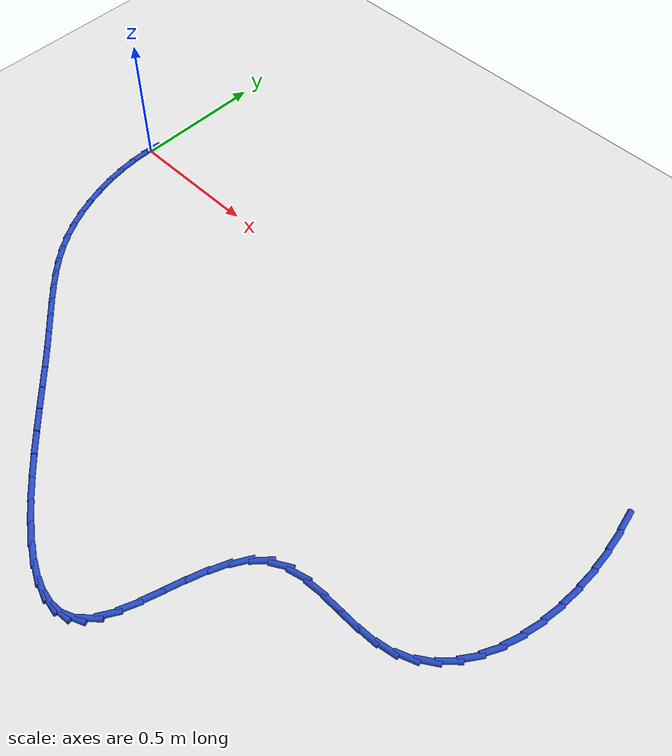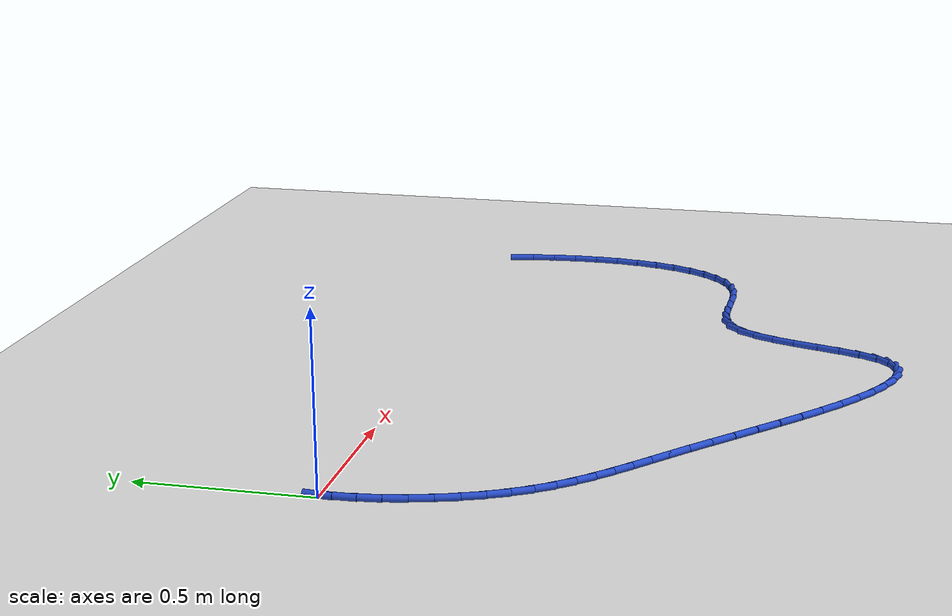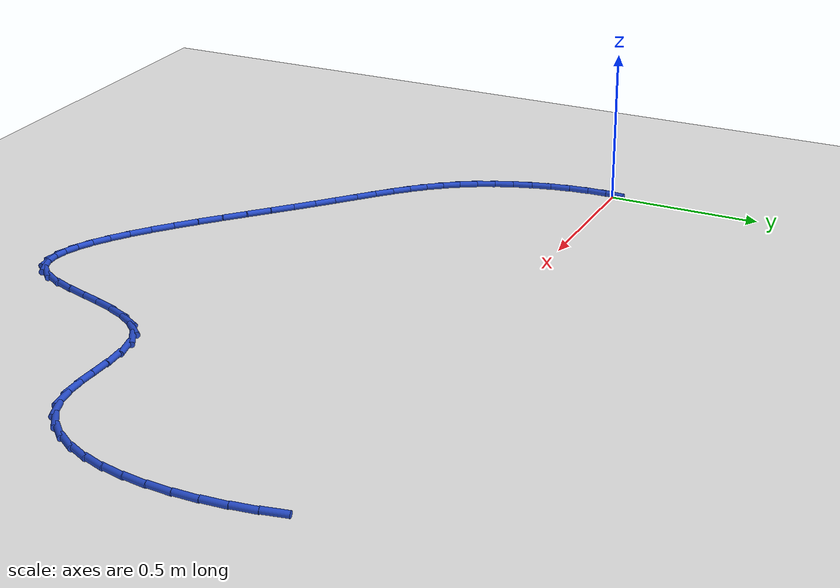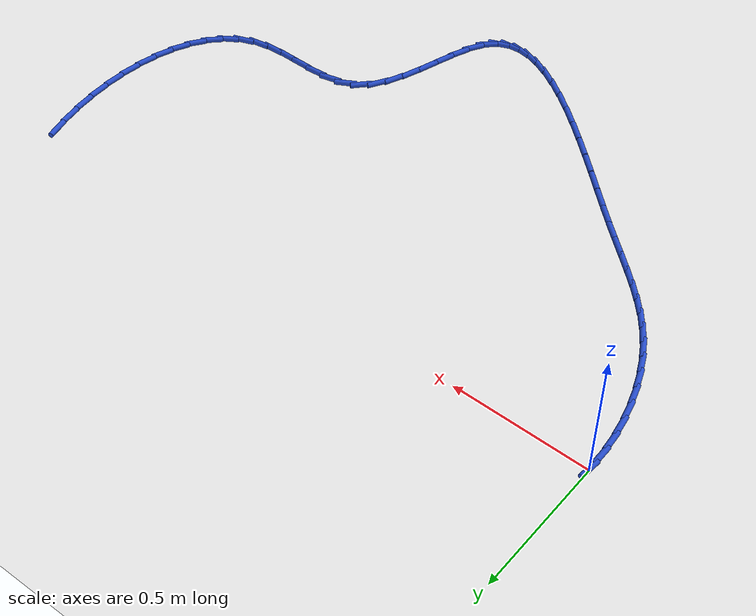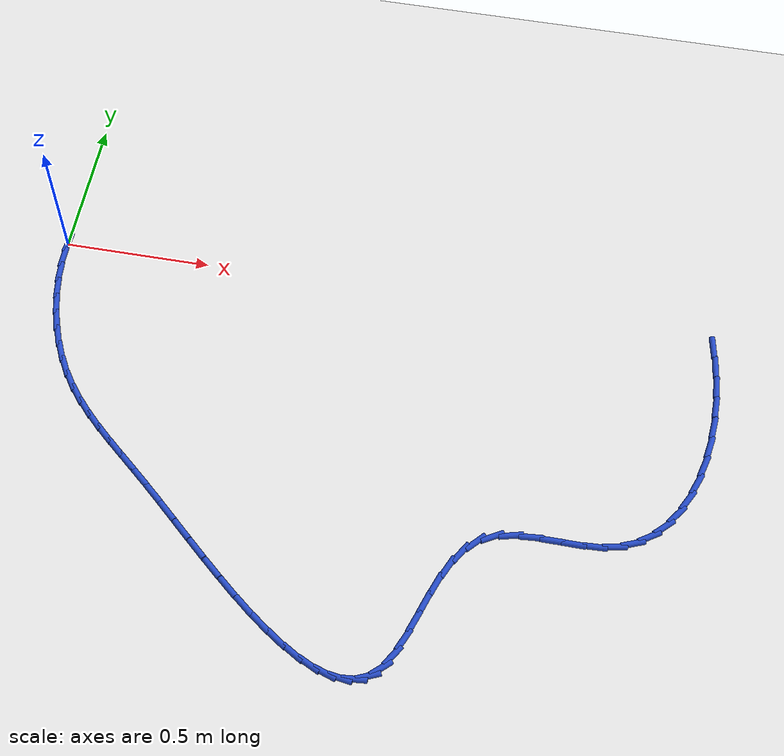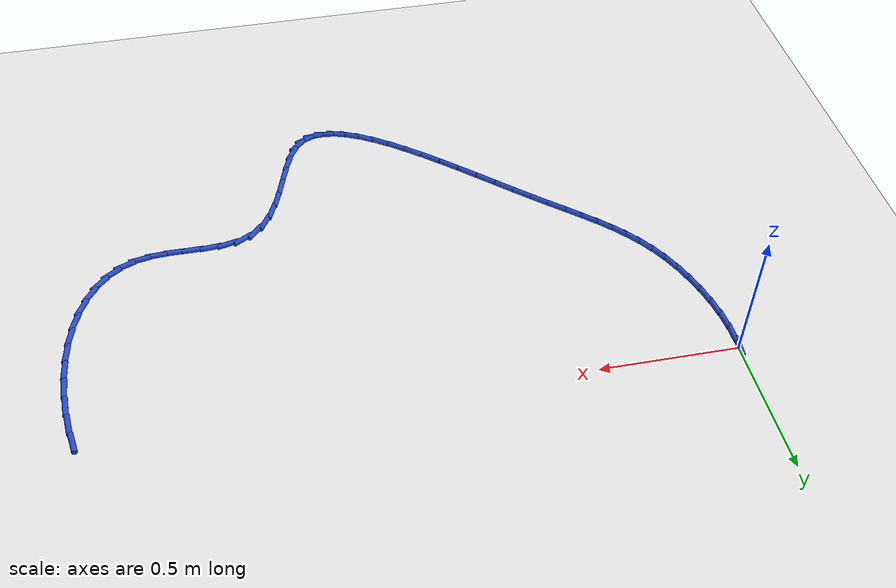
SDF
<sdf version="1.6">
 <world name="default">
  <model name="ground_plane">
   <static>1</static>
   <link name="link">
    <collision name="collision">
     <geometry><plane><normal>0 0 1</normal><size>100 100</size></plane></geometry>
     <surface><friction><ode><mu>100</mu><mu2>50</mu2></ode></friction></surface>
    </collision>
    <visual name="visual">
     <cast_shadows>0</cast_shadows>
     <geometry><plane><normal>0 0 1</normal><size>100 100</size></plane></geometry>
     <material>
      <script><uri>file://media/materials/scripts/gazebo.material</uri><name>Gazebo/WhiteGlow</name></script>
     </material>
    </visual>
   </link>
  </model>
  <model name="line">
   <link name="link_60">
    <pose>2.2459527687845013 -0.031813403079097774 0.01 0 1.57 -1.3912242281037195</pose>
    <collision name="collision">
     <geometry><cylinder><radius>0.01</radius><length>0.08</length></cylinder></geometry>
    </collision>
    <visual name="visual">
     <material>
      <script><name>Gazebo/Blue</name><uri>file://media/materials/scripts/gazebo.material</uri></script>
     </material>
     <geometry><cylinder><radius>0.01</radius><length>0.08</length></cylinder></geometry>
    </visual>
   </link>
   <link name="link_61">
    <pose>2.259685885495849 -0.1074664982625264 0.01 0 1.57 -1.4566532506845868</pose>
    <collision name="collision">
     <geometry><cylinder><radius>0.01</radius><length>0.08</length></cylinder></geometry>
    </collision>
    <visual name="visual">
     <material>
      <script><name>Gazebo/Blue</name><uri>file://media/materials/scripts/gazebo.material</uri></script>
     </material>
     <geometry><cylinder><radius>0.01</radius><length>0.08</length></cylinder></geometry>
    </visual>
   </link>
   <link name="link_62">
    <pose>2.268529218725494 -0.18460559937771298 0.01 0 1.57 -1.5217881517163596</pose>
    <collision name="collision">
     <geometry><cylinder><radius>0.01</radius><length>0.08</length></cylinder></geometry>
    </collision>
    <visual name="visual">
     <material>
      <script><name>Gazebo/Blue</name><uri>file://media/materials/scripts/gazebo.material</uri></script>
     </material>
     <geometry><cylinder><radius>0.01</radius><length>0.08</length></cylinder></geometry>
    </visual>
   </link>
   <link name="link_63">
    <pose>2.272332141116753 -0.262141179438267 0.01 0 1.57 1.552733870946709</pose>
    <collision name="collision">
     <geometry><cylinder><radius>0.01</radius><length>0.08</length></cylinder></geometry>
    </collision>
    <visual name="visual">
     <material>
      <script><name>Gazebo/Blue</name><uri>file://media/materials/scripts/gazebo.material</uri></script>
     </material>
     <geometry><cylinder><radius>0.01</radius><length>0.08</length></cylinder></geometry>
    </visual>
   </link>
   <link name="link_64">
    <pose>2.2709440253129407 -0.33898371145779504 0.01 0 1.57 1.481376678435889</pose>
    <collision name="collision">
     <geometry><cylinder><radius>0.01</radius><length>0.08</length></cylinder></geometry>
    </collision>
    <visual name="visual">
     <material>
      <script><name>Gazebo/Blue</name><uri>file://media/materials/scripts/gazebo.material</uri></script>
     </material>
     <geometry><cylinder><radius>0.01</radius><length>0.08</length></cylinder></geometry>
    </visual>
   </link>
   <link name="link_65">
    <pose>2.2642142439573747 -0.414043668449907 0.01 0 1.57 1.403077558146375</pose>
    <collision name="collision">
     <geometry><cylinder><radius>0.01</radius><length>0.08</length></cylinder></geometry>
    </collision>
    <visual name="visual">
     <material>
      <script><name>Gazebo/Blue</name><uri>file://media/materials/scripts/gazebo.material</uri></script>
     </material>
     <geometry><cylinder><radius>0.01</radius><length>0.08</length></cylinder></geometry>
    </visual>
   </link>
   <link name="link_66">
    <pose>2.2519921696933713 -0.48623152342821185 0.01 0 1.57 1.3146967778949048</pose>
    <collision name="collision">
     <geometry><cylinder><radius>0.01</radius><length>0.08</length></cylinder></geometry>
    </collision>
    <visual name="visual">
     <material>
      <script><name>Gazebo/Blue</name><uri>file://media/materials/scripts/gazebo.material</uri></script>
     </material>
     <geometry><cylinder><radius>0.01</radius><length>0.08</length></cylinder></geometry>
    </visual>
   </link>
   <link name="link_67">
    <pose>2.2341271751642466 -0.554457749406317 0.01 0 1.57 1.21247132509317</pose>
    <collision name="collision">
     <geometry><cylinder><radius>0.01</radius><length>0.08</length></cylinder></geometry>
    </collision>
    <visual name="visual">
     <material>
      <script><name>Gazebo/Blue</name><uri>file://media/materials/scripts/gazebo.material</uri></script>
     </material>
     <geometry><cylinder><radius>0.01</radius><length>0.08</length></cylinder></geometry>
    </visual>
   </link>
   <link name="link_68">
    <pose>2.2104686330133174 -0.6176328193978314 0.01 0 1.57 1.092038677563902</pose>
    <collision name="collision">
     <geometry><cylinder><radius>0.01</radius><length>0.08</length></cylinder></geometry>
    </collision>
    <visual name="visual">
     <material>
      <script><name>Gazebo/Blue</name><uri>file://media/materials/scripts/gazebo.material</uri></script>
     </material>
     <geometry><cylinder><radius>0.01</radius><length>0.08</length></cylinder></geometry>
    </visual>
   </link>
   <link name="link_69">
    <pose>2.1808659158838997 -0.6746672064163639 0.01 0 1.57 0.9489120036592131</pose>
    <collision name="collision">
     <geometry><cylinder><radius>0.01</radius><length>0.08</length></cylinder></geometry>
    </collision>
    <visual name="visual">
     <material>
      <script><name>Gazebo/Blue</name><uri>file://media/materials/scripts/gazebo.material</uri></script>
     </material>
     <geometry><cylinder><radius>0.01</radius><length>0.08</length></cylinder></geometry>
    </visual>
   </link>
   <link name="link_70">
    <pose>2.14516839641931 -0.724471383475524 0.01 0 1.57 0.7799023132848136</pose>
    <collision name="collision">
     <geometry><cylinder><radius>0.01</radius><length>0.08</length></cylinder></geometry>
    </collision>
    <visual name="visual">
     <material>
      <script><name>Gazebo/Blue</name><uri>file://media/materials/scripts/gazebo.material</uri></script>
     </material>
     <geometry><cylinder><radius>0.01</radius><length>0.08</length></cylinder></geometry>
    </visual>
   </link>
   <link name="link_71">
    <pose>2.103225447262865 -0.7659558235889186 0.01 0 1.57 0.5858393447261251</pose>
    <collision name="collision">
     <geometry><cylinder><radius>0.01</radius><length>0.08</length></cylinder></geometry>
    </collision>
    <visual name="visual">
     <material>
      <script><name>Gazebo/Blue</name><uri>file://media/materials/scripts/gazebo.material</uri></script>
     </material>
     <geometry><cylinder><radius>0.01</radius><length>0.08</length></cylinder></geometry>
    </visual>
   </link>
   <link name="link_72">
    <pose>2.054886441057881 -0.7980309997701569 0.01 0 1.57 0.3745569302507733</pose>
    <collision name="collision">
     <geometry><cylinder><radius>0.01</radius><length>0.08</length></cylinder></geometry>
    </collision>
    <visual name="visual">
     <material>
      <script><name>Gazebo/Blue</name><uri>file://media/materials/scripts/gazebo.material</uri></script>
     </material>
     <geometry><cylinder><radius>0.01</radius><length>0.08</length></cylinder></geometry>
    </visual>
   </link>
   <link name="link_73">
    <pose>2.0000007504476747 -0.8196073850328481 0.01 0 1.57 0.17216087403356725</pose>
    <collision name="collision">
     <geometry><cylinder><radius>0.01</radius><length>0.08</length></cylinder></geometry>
    </collision>
    <visual name="visual">
     <material>
      <script><name>Gazebo/Blue</name><uri>file://media/materials/scripts/gazebo.material</uri></script>
     </material>
     <geometry><cylinder><radius>0.01</radius><length>0.08</length></cylinder></geometry>
    </visual>
   </link>
   <link name="link_74">
    <pose>1.9387494240128234 -0.8302579002778486 0.01 0 1.57 0.043564233098058944</pose>
    <collision name="collision">
     <geometry><cylinder><radius>0.01</radius><length>0.08</length></cylinder></geometry>
    </collision>
    <visual name="visual">
     <material>
      <script><name>Gazebo/Blue</name><uri>file://media/materials/scripts/gazebo.material</uri></script>
     </material>
     <geometry><cylinder><radius>0.01</radius><length>0.08</length></cylinder></geometry>
    </visual>
   </link>
   <link name="link_75">
    <pose>1.873098089576927 -0.8331197609970615 0.01 0 1.57 -0.008831704530728205</pose>
    <collision name="collision">
     <geometry><cylinder><radius>0.01</radius><length>0.08</length></cylinder></geometry>
    </collision>
    <visual name="visual">
     <material>
      <script><name>Gazebo/Blue</name><uri>file://media/materials/scripts/gazebo.material</uri></script>
     </material>
     <geometry><cylinder><radius>0.01</radius><length>0.08</length></cylinder></geometry>
    </visual>
   </link>
   <link name="link_76">
    <pose>1.8056099530855525 -0.8325237102190371 0.01 0 1.57 0.004158649828105054</pose>
    <collision name="collision">
     <geometry><cylinder><radius>0.01</radius><length>0.08</length></cylinder></geometry>
    </collision>
    <visual name="visual">
     <material>
      <script><name>Gazebo/Blue</name><uri>file://media/materials/scripts/gazebo.material</uri></script>
     </material>
     <geometry><cylinder><radius>0.01</radius><length>0.08</length></cylinder></geometry>
    </visual>
   </link>
   <link name="link_77">
    <pose>1.7388486499340636 -0.8328013487014414 0.01 0 1.57 0.08617108545308087</pose>
    <collision name="collision">
     <geometry><cylinder><radius>0.01</radius><length>0.08</length></cylinder></geometry>
    </collision>
    <visual name="visual">
     <material>
      <script><name>Gazebo/Blue</name><uri>file://media/materials/scripts/gazebo.material</uri></script>
     </material>
     <geometry><cylinder><radius>0.01</radius><length>0.08</length></cylinder></geometry>
    </visual>
   </link>
   <link name="link_78">
    <pose>1.6753778155178223 -0.8382842772019397 0.01 0 1.57 0.2550096090790742</pose>
    <collision name="collision">
     <geometry><cylinder><radius>0.01</radius><length>0.08</length></cylinder></geometry>
    </collision>
    <visual name="visual">
     <material>
      <script><name>Gazebo/Blue</name><uri>file://media/materials/scripts/gazebo.material</uri></script>
     </material>
     <geometry><cylinder><radius>0.01</radius><length>0.08</length></cylinder></geometry>
    </visual>
   </link>
   <link name="link_79">
    <pose>1.6177610852321913 -0.8533040964781969 0.01 0 1.57 0.5296409430327688</pose>
    <collision name="collision">
     <geometry><cylinder><radius>0.01</radius><length>0.08</length></cylinder></geometry>
    </collision>
    <visual name="visual">
     <material>
      <script><name>Gazebo/Blue</name><uri>file://media/materials/scripts/gazebo.material</uri></script>
     </material>
     <geometry><cylinder><radius>0.01</radius><length>0.08</length></cylinder></geometry>
    </visual>
   </link>
   <link name="link_80">
    <pose>1.5685264645867172 -0.8821277564366301 0.01 0 1.57 0.8291518748542331</pose>
    <collision name="collision">
     <geometry><cylinder><radius>0.01</radius><length>0.08</length></cylinder></geometry>
    </collision>
    <visual name="visual">
     <material>
      <script><name>Gazebo/Blue</name><uri>file://media/materials/scripts/gazebo.material</uri></script>
     </material>
     <geometry><cylinder><radius>0.01</radius><length>0.08</length></cylinder></geometry>
    </visual>
   </link>
   <link name="link_81">
    <pose>1.5284606214315035 -0.9258625291060414 0.01 0 1.57 1.0375245438962044</pose>
    <collision name="collision">
     <geometry><cylinder><radius>0.01</radius><length>0.08</length></cylinder></geometry>
    </collision>
    <visual name="visual">
     <material>
      <script><name>Gazebo/Blue</name><uri>file://media/materials/scripts/gazebo.material</uri></script>
     </material>
     <geometry><cylinder><radius>0.01</radius><length>0.08</length></cylinder></geometry>
    </visual>
   </link>
   <link name="link_82">
    <pose>1.49585734318108 -0.9810923253387697 0.01 0 1.57 1.165153686383182</pose>
    <collision name="collision">
     <geometry><cylinder><radius>0.01</radius><length>0.08</length></cylinder></geometry>
    </collision>
    <visual name="visual">
     <material>
      <script><name>Gazebo/Blue</name><uri>file://media/materials/scripts/gazebo.material</uri></script>
     </material>
     <geometry><cylinder><radius>0.01</radius><length>0.08</length></cylinder></geometry>
    </visual>
   </link>
   <link name="link_83">
    <pose>1.4688183869898215 -1.0440526147979652 0.01 0 1.57 1.2348046860843414</pose>
    <collision name="collision">
     <geometry><cylinder><radius>0.01</radius><length>0.08</length></cylinder></geometry>
    </collision>
    <visual name="visual">
     <material>
      <script><name>Gazebo/Blue</name><uri>file://media/materials/scripts/gazebo.material</uri></script>
     </material>
     <geometry><cylinder><radius>0.01</radius><length>0.08</length></cylinder></geometry>
    </visual>
   </link>
   <link name="link_84">
    <pose>1.4454455100121038 -1.1109788671467784 0.01 0 1.57 1.2594161922465326</pose>
    <collision name="collision">
     <geometry><cylinder><radius>0.01</radius><length>0.08</length></cylinder></geometry>
    </collision>
    <visual name="visual">
     <material>
      <script><name>Gazebo/Blue</name><uri>file://media/materials/scripts/gazebo.material</uri></script>
     </material>
     <geometry><cylinder><radius>0.01</radius><length>0.08</length></cylinder></geometry>
    </visual>
   </link>
   <link name="link_85">
    <pose>1.4238404694023015 -1.1781065520483598 0.01 0 1.57 1.241317449766482</pose>
    <collision name="collision">
     <geometry><cylinder><radius>0.01</radius><length>0.08</length></cylinder></geometry>
    </collision>
    <visual name="visual">
     <material>
      <script><name>Gazebo/Blue</name><uri>file://media/materials/scripts/gazebo.material</uri></script>
     </material>
     <geometry><cylinder><radius>0.01</radius><length>0.08</length></cylinder></geometry>
    </visual>
   </link>
   <link name="link_86">
    <pose>1.402105022314791 -1.2416711391658573 0.01 0 1.57 1.17098503668811</pose>
    <collision name="collision">
     <geometry><cylinder><radius>0.01</radius><length>0.08</length></cylinder></geometry>
    </collision>
    <visual name="visual">
     <material>
      <script><name>Gazebo/Blue</name><uri>file://media/materials/scripts/gazebo.material</uri></script>
     </material>
     <geometry><cylinder><radius>0.01</radius><length>0.08</length></cylinder></geometry>
    </visual>
   </link>
   <link name="link_87">
    <pose>1.3783409259039483 -1.297908098162423 0.01 0 1.57 1.0205954968439659</pose>
    <collision name="collision">
     <geometry><cylinder><radius>0.01</radius><length>0.08</length></cylinder></geometry>
    </collision>
    <visual name="visual">
     <material>
      <script><name>Gazebo/Blue</name><uri>file://media/materials/scripts/gazebo.material</uri></script>
     </material>
     <geometry><cylinder><radius>0.01</radius><length>0.08</length></cylinder></geometry>
    </visual>
   </link>
   <link name="link_88">
    <pose>1.3506499373241478 -1.3430528987012056 0.01 0 1.57 0.7496164368153231</pose>
    <collision name="collision">
     <geometry><cylinder><radius>0.01</radius><length>0.08</length></cylinder></geometry>
    </collision>
    <visual name="visual">
     <material>
      <script><name>Gazebo/Blue</name><uri>file://media/materials/scripts/gazebo.material</uri></script>
     </material>
     <geometry><cylinder><radius>0.01</radius><length>0.08</length></cylinder></geometry>
    </visual>
   </link>
   <link name="link_89">
    <pose>1.317441114754525 -1.3739663363847865 0.01 0 1.57 0.4104778298970136</pose>
    <collision name="collision">
     <geometry><cylinder><radius>0.01</radius><length>0.08</length></cylinder></geometry>
    </collision>
    <visual name="visual">
     <material>
      <script><name>Gazebo/Blue</name><uri>file://media/materials/scripts/gazebo.material</uri></script>
     </material>
     <geometry><cylinder><radius>0.01</radius><length>0.08</length></cylinder></geometry>
    </visual>
   </link>
   <link name="link_90">
    <pose>1.2787442323942095 -1.3908071970145905 0.01 0 1.57 0.09167555679548034</pose>
    <collision name="collision">
     <geometry><cylinder><radius>0.01</radius><length>0.08</length></cylinder></geometry>
    </collision>
    <visual name="visual">
     <material>
      <script><name>Gazebo/Blue</name><uri>file://media/materials/scripts/gazebo.material</uri></script>
     </material>
     <geometry><cylinder><radius>0.01</radius><length>0.08</length></cylinder></geometry>
    </visual>
   </link>
   <link name="link_91">
    <pose>1.2351214335297533 -1.394817582661417 0.01 0 1.57 -0.1566133867615368</pose>
    <collision name="collision">
     <geometry><cylinder><radius>0.01</radius><length>0.08</length></cylinder></geometry>
    </collision>
    <visual name="visual">
     <material>
      <script><name>Gazebo/Blue</name><uri>file://media/materials/scripts/gazebo.material</uri></script>
     </material>
     <geometry><cylinder><radius>0.01</radius><length>0.08</length></cylinder></geometry>
    </visual>
   </link>
   <link name="link_92">
    <pose>1.1871351779165404 -1.387240239377548 0.01 0 1.57 -0.33317479895003</pose>
    <collision name="collision">
     <geometry><cylinder><radius>0.01</radius><length>0.08</length></cylinder></geometry>
    </collision>
    <visual name="visual">
     <material>
      <script><name>Gazebo/Blue</name><uri>file://media/materials/scripts/gazebo.material</uri></script>
     </material>
     <geometry><cylinder><radius>0.01</radius><length>0.08</length></cylinder></geometry>
    </visual>
   </link>
   <link name="link_93">
    <pose>1.135347925309956 -1.369317913215265 0.01 0 1.57 -0.45652275618317256</pose>
    <collision name="collision">
     <geometry><cylinder><radius>0.01</radius><length>0.08</length></cylinder></geometry>
    </collision>
    <visual name="visual">
     <material>
      <script><name>Gazebo/Blue</name><uri>file://media/materials/scripts/gazebo.material</uri></script>
     </material>
     <geometry><cylinder><radius>0.01</radius><length>0.08</length></cylinder></geometry>
    </visual>
   </link>
   <link name="link_94">
    <pose>1.0803221354653858 -1.3422933502268517 0.01 0 1.57 -0.5437633219238047</pose>
    <collision name="collision">
     <geometry><cylinder><radius>0.01</radius><length>0.08</length></cylinder></geometry>
    </collision>
    <visual name="visual">
     <material>
      <script><name>Gazebo/Blue</name><uri>file://media/materials/scripts/gazebo.material</uri></script>
     </material>
     <geometry><cylinder><radius>0.01</radius><length>0.08</length></cylinder></geometry>
    </visual>
   </link>
   <link name="link_95">
    <pose>1.022620268138214 -1.3074092964645894 0.01 0 1.57 -0.6065619564182877</pose>
    <collision name="collision">
     <geometry><cylinder><radius>0.01</radius><length>0.08</length></cylinder></geometry>
    </collision>
    <visual name="visual">
     <material>
      <script><name>Gazebo/Blue</name><uri>file://media/materials/scripts/gazebo.material</uri></script>
     </material>
     <geometry><cylinder><radius>0.01</radius><length>0.08</length></cylinder></geometry>
    </visual>
   </link>
   <link name="link_96">
    <pose>0.9628047830838243 -1.2659084979807598 0.01 0 1.57 -0.6523051783694331</pose>
    <collision name="collision">
     <geometry><cylinder><radius>0.01</radius><length>0.08</length></cylinder></geometry>
    </collision>
    <visual name="visual">
     <material>
      <script><name>Gazebo/Blue</name><uri>file://media/materials/scripts/gazebo.material</uri></script>
     </material>
     <geometry><cylinder><radius>0.01</radius><length>0.08</length></cylinder></geometry>
    </visual>
   </link>
   <link name="link_97">
    <pose>0.9014381400576034 -1.2190337008276464 0.01 0 1.57 -0.6856146393436244</pose>
    <collision name="collision">
     <geometry><cylinder><radius>0.01</radius><length>0.08</length></cylinder></geometry>
    </collision>
    <visual name="visual">
     <material>
      <script><name>Gazebo/Blue</name><uri>file://media/materials/scripts/gazebo.material</uri></script>
     </material>
     <geometry><cylinder><radius>0.01</radius><length>0.08</length></cylinder></geometry>
    </visual>
   </link>
   <link name="link_98">
    <pose>0.8390827988149349 -1.16802765105753 0.01 0 1.57 -0.7093766486387101</pose>
    <collision name="collision">
     <geometry><cylinder><radius>0.01</radius><length>0.08</length></cylinder></geometry>
    </collision>
    <visual name="visual">
     <material>
      <script><name>Gazebo/Blue</name><uri>file://media/materials/scripts/gazebo.material</uri></script>
     </material>
     <geometry><cylinder><radius>0.01</radius><length>0.08</length></cylinder></geometry>
    </visual>
   </link>
   <link name="link_99">
    <pose>0.7763012191112041 -1.1141330947226944 0.01 0 1.57 -0.7253528106126194</pose>
    <collision name="collision">
     <geometry><cylinder><radius>0.01</radius><length>0.08</length></cylinder></geometry>
    </collision>
    <visual name="visual">
     <material>
      <script><name>Gazebo/Blue</name><uri>file://media/materials/scripts/gazebo.material</uri></script>
     </material>
     <geometry><cylinder><radius>0.01</radius><length>0.08</length></cylinder></geometry>
    </visual>
   </link>
   <link name="link_100">
    <pose>0.7136558607017945 -1.0585927778754194 0.01 0 1.57 -0.7345188316734146</pose>
    <collision name="collision">
     <geometry><cylinder><radius>0.01</radius><length>0.08</length></cylinder></geometry>
    </collision>
    <visual name="visual">
     <material>
      <script><name>Gazebo/Blue</name><uri>file://media/materials/scripts/gazebo.material</uri></script>
     </material>
     <geometry><cylinder><radius>0.01</radius><length>0.08</length></cylinder></geometry>
    </visual>
   </link>
   <link name="link_101">
    <pose>0.6517091833420932 -1.00264944656799 0.01 0 1.57 -0.7372276793848825</pose>
    <collision name="collision">
     <geometry><cylinder><radius>0.01</radius><length>0.08</length></cylinder></geometry>
    </collision>
    <visual name="visual">
     <material>
      <script><name>Gazebo/Blue</name><uri>file://media/materials/scripts/gazebo.material</uri></script>
     </material>
     <geometry><cylinder><radius>0.01</radius><length>0.08</length></cylinder></geometry>
    </visual>
   </link>
   <link name="link_102">
    <pose>0.5910236467874835 -0.9475458468526872 0.01 0 1.57 -0.733240878392888</pose>
    <collision name="collision">
     <geometry><cylinder><radius>0.01</radius><length>0.08</length></cylinder></geometry>
    </collision>
    <visual name="visual">
     <material>
      <script><name>Gazebo/Blue</name><uri>file://media/materials/scripts/gazebo.material</uri></script>
     </material>
     <geometry><cylinder><radius>0.01</radius><length>0.08</length></cylinder></geometry>
    </visual>
   </link>
   <link name="link_103">
    <pose>0.5321617107933505 -0.8945247247817929 0.01 0 1.57 -0.7218790603040492</pose>
    <collision name="collision">
     <geometry><cylinder><radius>0.01</radius><length>0.08</length></cylinder></geometry>
    </collision>
    <visual name="visual">
     <material>
      <script><name>Gazebo/Blue</name><uri>file://media/materials/scripts/gazebo.material</uri></script>
     </material>
     <geometry><cylinder><radius>0.01</radius><length>0.08</length></cylinder></geometry>
    </visual>
   </link>
   <link name="link_104">
    <pose>0.47567888623524657 -0.8447973637653782 0.01 0 1.57 -0.7100350715369338</pose>
    <collision name="collision">
     <geometry><cylinder><radius>0.01</radius><length>0.08</length></cylinder></geometry>
    </collision>
    <visual name="visual">
     <material>
      <script><name>Gazebo/Blue</name><uri>file://media/materials/scripts/gazebo.material</uri></script>
     </material>
     <geometry><cylinder><radius>0.01</radius><length>0.08</length></cylinder></geometry>
    </visual>
   </link>
   <link name="link_105">
    <pose>0.42191063675810986 -0.798578733065873 0.01 0 1.57 -0.7083541314229664</pose>
    <collision name="collision">
     <geometry><cylinder><radius>0.01</radius><length>0.08</length></cylinder></geometry>
    </collision>
    <visual name="visual">
     <material>
      <script><name>Gazebo/Blue</name><uri>file://media/materials/scripts/gazebo.material</uri></script>
     </material>
     <geometry><cylinder><radius>0.01</radius><length>0.08</length></cylinder></geometry>
    </visual>
   </link>
   <link name="link_106">
    <pose>0.37093258715226 -0.7549073221225537 0.01 0 1.57 -0.7193265075686208</pose>
    <collision name="collision">
     <geometry><cylinder><radius>0.01</radius><length>0.08</length></cylinder></geometry>
    </collision>
    <visual name="visual">
     <material>
      <script><name>Gazebo/Blue</name><uri>file://media/materials/scripts/gazebo.material</uri></script>
     </material>
     <geometry><cylinder><radius>0.01</radius><length>0.08</length></cylinder></geometry>
    </visual>
   </link>
   <link name="link_107">
    <pose>0.32280538601250364 -0.7127538122253904 0.01 0 1.57 -0.7445512974469973</pose>
    <collision name="collision">
     <geometry><cylinder><radius>0.01</radius><length>0.08</length></cylinder></geometry>
    </collision>
    <visual name="visual">
     <material>
      <script><name>Gazebo/Blue</name><uri>file://media/materials/scripts/gazebo.material</uri></script>
     </material>
     <geometry><cylinder><radius>0.01</radius><length>0.08</length></cylinder></geometry>
    </visual>
   </link>
   <link name="link_108">
    <pose>0.27758968193364686 -0.6710888846643511 0.01 0 1.57 -0.7849494382984589</pose>
    <collision name="collision">
     <geometry><cylinder><radius>0.01</radius><length>0.08</length></cylinder></geometry>
    </collision>
    <visual name="visual">
     <material>
      <script><name>Gazebo/Blue</name><uri>file://media/materials/scripts/gazebo.material</uri></script>
     </material>
     <geometry><cylinder><radius>0.01</radius><length>0.08</length></cylinder></geometry>
    </visual>
   </link>
   <link name="link_109">
    <pose>0.2353461235104975 -0.6288832207294074 0.01 0 1.57 -0.8403511943941394</pose>
    <collision name="collision">
     <geometry><cylinder><radius>0.01</radius><length>0.08</length></cylinder></geometry>
    </collision>
    <visual name="visual">
     <material>
      <script><name>Gazebo/Blue</name><uri>file://media/materials/scripts/gazebo.material</uri></script>
     </material>
     <geometry><cylinder><radius>0.01</radius><length>0.08</length></cylinder></geometry>
    </visual>
   </link>
   <link name="link_110">
    <pose>0.19613535933786144 -0.5851075017105285 0.01 0 1.57 -0.9091111942491901</pose>
    <collision name="collision">
     <geometry><cylinder><radius>0.01</radius><length>0.08</length></cylinder></geometry>
    </collision>
    <visual name="visual">
     <material>
      <script><name>Gazebo/Blue</name><uri>file://media/materials/scripts/gazebo.material</uri></script>
     </material>
     <geometry><cylinder><radius>0.01</radius><length>0.08</length></cylinder></geometry>
    </visual>
   </link>
   <link name="link_111">
    <pose>0.1600180380105455 -0.5387324088976836 0.01 0 1.57 -0.9879462189386575</pose>
    <collision name="collision">
     <geometry><cylinder><radius>0.01</radius><length>0.08</length></cylinder></geometry>
    </collision>
    <visual name="visual">
     <material>
      <script><name>Gazebo/Blue</name><uri>file://media/materials/scripts/gazebo.material</uri></script>
     </material>
     <geometry><cylinder><radius>0.01</radius><length>0.08</length></cylinder></geometry>
    </visual>
   </link>
   <link name="link_112">
    <pose>0.12705510425012717 -0.4887317194546711 0.01 0 1.57 -1.0689760077009816</pose>
    <collision name="collision">
     <geometry><cylinder><radius>0.01</radius><length>0.08</length></cylinder></geometry>
    </collision>
    <visual name="visual">
     <material>
      <script><name>Gazebo/Blue</name><uri>file://media/materials/scripts/gazebo.material</uri></script>
     </material>
     <geometry><cylinder><radius>0.01</radius><length>0.08</length></cylinder></geometry>
    </visual>
   </link>
   <link name="link_113">
    <pose>0.09735786186475516 -0.4346056924214628 0.01 0 1.57 -1.143940115957081</pose>
    <collision name="collision">
     <geometry><cylinder><radius>0.01</radius><length>0.08</length></cylinder></geometry>
    </collision>
    <visual name="visual">
     <material>
      <script><name>Gazebo/Blue</name><uri>file://media/materials/scripts/gazebo.material</uri></script>
     </material>
     <geometry><cylinder><radius>0.01</radius><length>0.08</length></cylinder></geometry>
    </visual>
   </link>
   <link name="link_114">
    <pose>0.0711444111718591 -0.3769710968942118 0.01 0 1.57 -1.214147771362702</pose>
    <collision name="collision">
     <geometry><cylinder><radius>0.01</radius><length>0.08</length></cylinder></geometry>
    </collision>
    <visual name="visual">
     <material>
      <script><name>Gazebo/Blue</name><uri>file://media/materials/scripts/gazebo.material</uri></script>
     </material>
     <geometry><cylinder><radius>0.01</radius><length>0.08</length></cylinder></geometry>
    </visual>
   </link>
   <link name="link_115">
    <pose>0.048646478375787366 -0.31658715456299213 0.01 0 1.57 -1.2817171148936986</pose>
    <collision name="collision">
     <geometry><cylinder><radius>0.01</radius><length>0.08</length></cylinder></geometry>
    </collision>
    <visual name="visual">
     <material>
      <script><name>Gazebo/Blue</name><uri>file://media/materials/scripts/gazebo.material</uri></script>
     </material>
     <geometry><cylinder><radius>0.01</radius><length>0.08</length></cylinder></geometry>
    </visual>
   </link>
   <link name="link_116">
    <pose>0.03009578968088911 -0.2542130871178804 0.01 0 1.57 -1.3485752239177655</pose>
    <collision name="collision">
     <geometry><cylinder><radius>0.01</radius><length>0.08</length></cylinder></geometry>
    </collision>
    <visual name="visual">
     <material>
      <script><name>Gazebo/Blue</name><uri>file://media/materials/scripts/gazebo.material</uri></script>
     </material>
     <geometry><cylinder><radius>0.01</radius><length>0.08</length></cylinder></geometry>
    </visual>
   </link>
   <link name="link_117">
    <pose>0.01572407129151264 -0.19060811624895058 0.01 0 1.57 -1.4165759478450521</pose>
    <collision name="collision">
     <geometry><cylinder><radius>0.01</radius><length>0.08</length></cylinder></geometry>
    </collision>
    <visual name="visual">
     <material>
      <script><name>Gazebo/Blue</name><uri>file://media/materials/scripts/gazebo.material</uri></script>
     </material>
     <geometry><cylinder><radius>0.01</radius><length>0.08</length></cylinder></geometry>
    </visual>
   </link>
   <link name="link_118">
    <pose>0.005763049412006553 -0.12653146364627743 0.01 0 1.57 -1.4876108838662592</pose>
    <collision name="collision">
     <geometry><cylinder><radius>0.01</radius><length>0.08</length></cylinder></geometry>
    </collision>
    <visual name="visual">
     <material>
      <script><name>Gazebo/Blue</name><uri>file://media/materials/scripts/gazebo.material</uri></script>
     </material>
     <geometry><cylinder><radius>0.01</radius><length>0.08</length></cylinder></geometry>
    </visual>
   </link>
   <link name="link_119">
    <pose>0.0004444502467194321 -0.06274235099993514 0.01 0 1.57 -1.5637127093373027</pose>
    <collision name="collision">
     <geometry><cylinder><radius>0.01</radius><length>0.08</length></cylinder></geometry>
    </collision>
    <visual name="visual">
     <material>
      <script><name>Gazebo/Blue</name><uri>file://media/materials/scripts/gazebo.material</uri></script>
     </material>
     <geometry><cylinder><radius>0.01</radius><length>0.08</length></cylinder></geometry>
    </visual>
   </link>
   <link name="link_120">
    <pose>0.0 -9.71445146547012e-17 0.01 0 1.57 1.494448418645752</pose>
    <collision name="collision">
     <geometry><cylinder><radius>0.01</radius><length>0.08</length></cylinder></geometry>
    </collision>
    <visual name="visual">
     <material>
      <script><name>Gazebo/Blue</name><uri>file://media/materials/scripts/gazebo.material</uri></script>
     </material>
     <geometry><cylinder><radius>0.01</radius><length>0.08</length></cylinder></geometry>
    </visual>
   </link>
  </model>
 </world>
</sdf>
